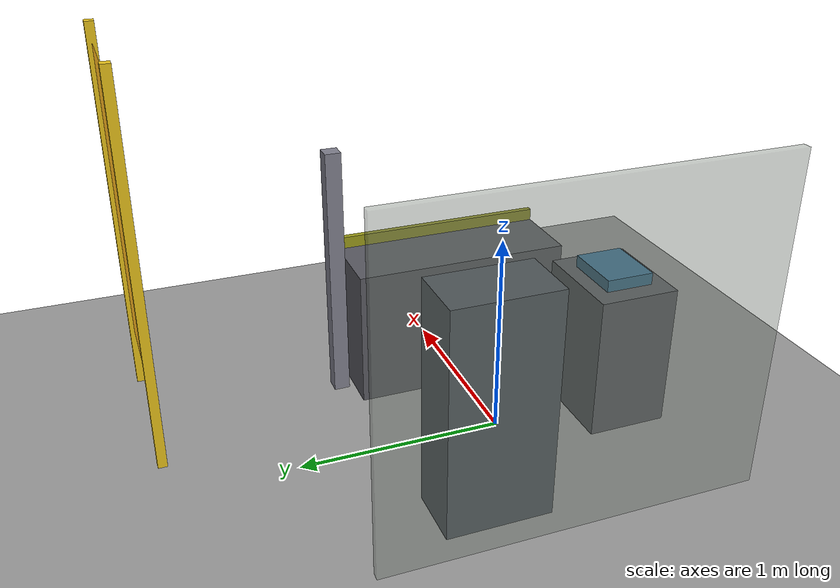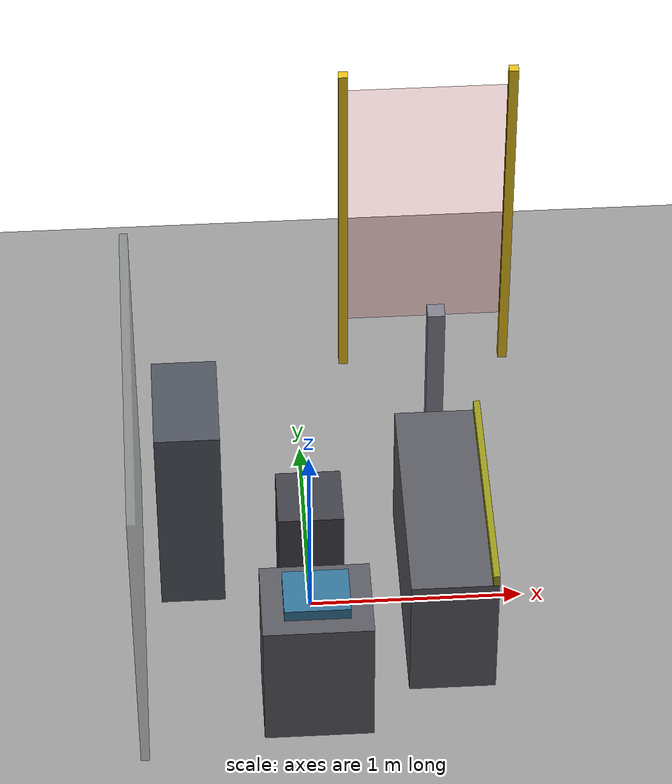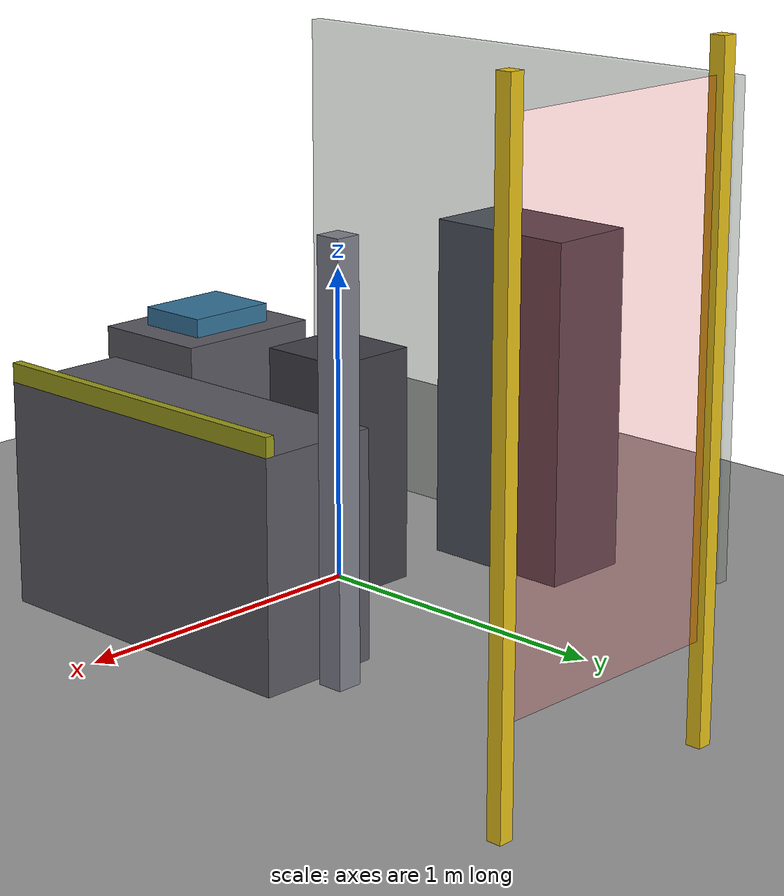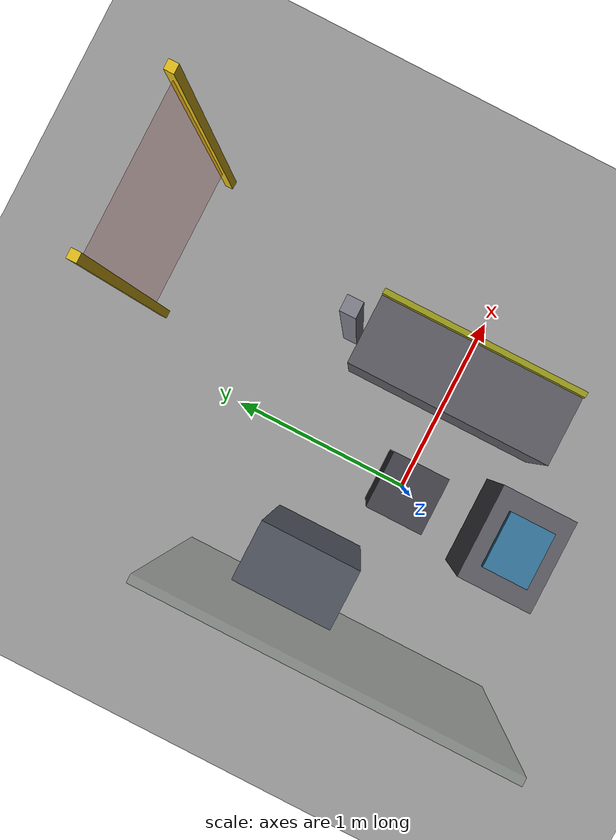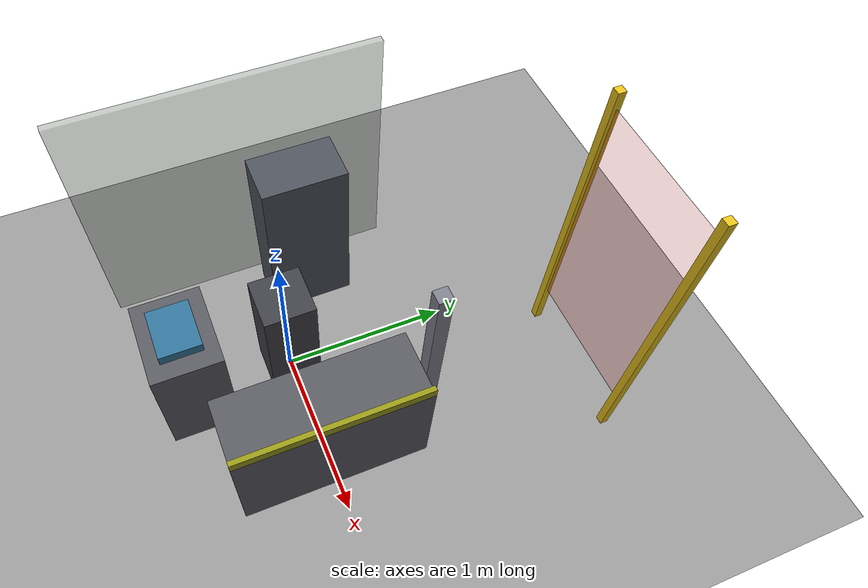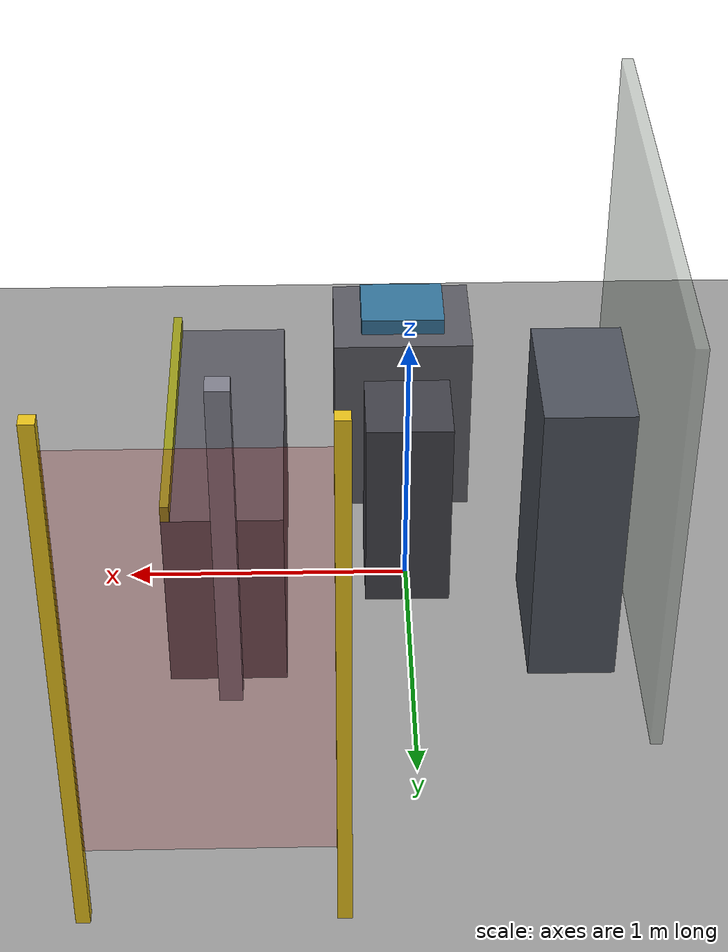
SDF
<?xml version="1.0"?>
<!-- Generated by simulation/generate_cell.py. Do not edit by hand. -->
<!-- Gazebo Harmonic (gz-sim 8). Not for Gazebo Classic. -->
<sdf version="1.9">
  <world name="arm_cell">
    <physics name="1ms" type="ignored">
      <max_step_size>0.001</max_step_size>
      <real_time_factor>1.0</real_time_factor>
    </physics>
    <plugin filename="gz-sim-physics-system" name="gz::sim::systems::Physics"/>
    <plugin filename="gz-sim-user-commands-system" name="gz::sim::systems::UserCommands"/>
    <plugin filename="gz-sim-scene-broadcaster-system" name="gz::sim::systems::SceneBroadcaster"/>
    <light type="directional" name="sun">
      <cast_shadows>true</cast_shadows>
      <pose>0 0 10 0 0 0</pose>
      <diffuse>0.8 0.8 0.8 1</diffuse>
      <specular>0.2 0.2 0.2 1</specular>
      <direction>-0.5 0.1 -0.9</direction>
    </light>
    <model name="ground_plane">
      <static>true</static>
      <link name="link">
        <collision name="collision">
          <geometry><plane><normal>0 0 1</normal><size>10 10</size></plane></geometry>
        </collision>
        <visual name="visual">
          <geometry><plane><normal>0 0 1</normal><size>10 10</size></plane></geometry>
          <material><ambient>0.6 0.6 0.6 1</ambient><diffuse>0.6 0.6 0.6 1</diffuse></material>
        </visual>
      </link>
    </model>
    <model name="pedestal">
      <static>true</static>
      <pose>0.0000 0.0000 0.3750 0 0 0</pose>
      <link name="link">
        <collision name="collision">
          <geometry><box><size>0.3000 0.3000 0.7500</size></box></geometry>
        </collision>
        <visual name="visual">
          <geometry><box><size>0.3000 0.3000 0.7500</size></box></geometry>
          <material><ambient>0.25 0.25 0.28 1</ambient><diffuse>0.25 0.25 0.28 1</diffuse></material>
        </visual>
      </link>
    </model>
    <model name="conveyor">
      <static>true</static>
      <pose>0.6300 0.0000 0.3500 0 0 0</pose>
      <link name="link">
        <collision name="collision">
          <geometry><box><size>0.4000 1.1000 0.7000</size></box></geometry>
        </collision>
        <visual name="visual">
          <geometry><box><size>0.4000 1.1000 0.7000</size></box></geometry>
          <material><ambient>0.35 0.35 0.38 1</ambient><diffuse>0.35 0.35 0.38 1</diffuse></material>
        </visual>
      </link>
    </model>
    <model name="conveyor_rail_far">
      <static>true</static>
      <pose>0.8150 0.0000 0.7300 0 0 0</pose>
      <link name="link">
        <collision name="collision">
          <geometry><box><size>0.0300 1.1000 0.0600</size></box></geometry>
        </collision>
        <visual name="visual">
          <geometry><box><size>0.0300 1.1000 0.0600</size></box></geometry>
          <material><ambient>0.6 0.6 0.1 1</ambient><diffuse>0.6 0.6 0.1 1</diffuse></material>
        </visual>
      </link>
    </model>
    <model name="camera_pillar">
      <static>true</static>
      <pose>0.6200 0.6200 0.6500 0 0 0</pose>
      <link name="link">
        <collision name="collision">
          <geometry><box><size>0.0800 0.0800 1.3000</size></box></geometry>
        </collision>
        <visual name="visual">
          <geometry><box><size>0.0800 0.0800 1.3000</size></box></geometry>
          <material><ambient>0.5 0.5 0.55 1</ambient><diffuse>0.5 0.5 0.55 1</diffuse></material>
        </visual>
      </link>
    </model>
    <model name="bench">
      <static>true</static>
      <pose>0.0000 -0.6000 0.3600 0 0 0</pose>
      <link name="link">
        <collision name="collision">
          <geometry><box><size>0.5000 0.4000 0.7200</size></box></geometry>
        </collision>
        <visual name="visual">
          <geometry><box><size>0.5000 0.4000 0.7200</size></box></geometry>
          <material><ambient>0.35 0.35 0.38 1</ambient><diffuse>0.35 0.35 0.38 1</diffuse></material>
        </visual>
      </link>
    </model>
    <model name="inspection_nest">
      <static>true</static>
      <pose>0.0000 -0.6000 0.7500 0 0 0</pose>
      <link name="link">
        <collision name="collision">
          <geometry><box><size>0.3000 0.2400 0.0600</size></box></geometry>
        </collision>
        <visual name="visual">
          <geometry><box><size>0.3000 0.2400 0.0600</size></box></geometry>
          <material><ambient>0.2 0.45 0.6 1</ambient><diffuse>0.2 0.45 0.6 1</diffuse></material>
        </visual>
      </link>
    </model>
    <model name="control_cabinet">
      <static>true</static>
      <pose>-0.5500 0.3000 0.5500 0 0 0</pose>
      <link name="link">
        <collision name="collision">
          <geometry><box><size>0.3000 0.5000 1.1000</size></box></geometry>
        </collision>
        <visual name="visual">
          <geometry><box><size>0.3000 0.5000 1.1000</size></box></geometry>
          <material><ambient>0.3 0.32 0.36 1</ambient><diffuse>0.3 0.32 0.36 1</diffuse></material>
        </visual>
      </link>
    </model>
    <model name="rear_guard">
      <static>true</static>
      <pose>-0.8000 0.0000 0.8000 0 0 0</pose>
      <link name="link">
        <collision name="collision">
          <geometry><box><size>0.0400 1.8000 1.6000</size></box></geometry>
        </collision>
        <visual name="visual">
          <geometry><box><size>0.0400 1.8000 1.6000</size></box></geometry>
          <material><ambient>0.45 0.5 0.45 0.4</ambient><diffuse>0.45 0.5 0.45 0.4</diffuse></material>
        </visual>
      </link>
    </model>
    <model name="light_curtain_emitter">
      <static>true</static>
      <pose>0.2500 1.6000 0.9500 0 0 0</pose>
      <link name="link">
        <visual name="visual">
          <geometry><box><size>0.0450 0.0450 1.9000</size></box></geometry>
          <material><ambient>0.9 0.75 0.1 1</ambient><diffuse>0.9 0.75 0.1 1</diffuse></material>
        </visual>
      </link>
    </model>
    <model name="light_curtain_receiver">
      <static>true</static>
      <pose>1.0500 1.6000 0.9500 0 0 0</pose>
      <link name="link">
        <visual name="visual">
          <geometry><box><size>0.0450 0.0450 1.9000</size></box></geometry>
          <material><ambient>0.9 0.75 0.1 1</ambient><diffuse>0.9 0.75 0.1 1</diffuse></material>
        </visual>
      </link>
    </model>
    <model name="light_curtain_field">
      <static>true</static>
      <pose>0.6500 1.6000 1.0500 0 0 0.0000</pose>
      <link name="link">
        <visual name="visual">
          <geometry><box><size>0.8000 0.0020 1.5000</size></box></geometry>
          <transparency>0.8</transparency>
          <material><ambient>0.9 0.1 0.1 0.2</ambient><diffuse>0.9 0.1 0.1 0.2</diffuse></material>
        </visual>
      </link>
    </model>
  </world>
</sdf>
